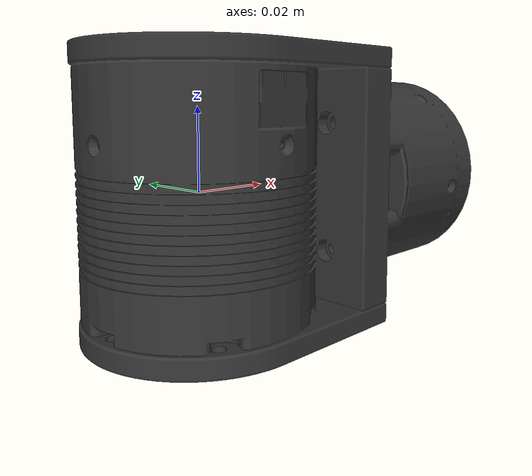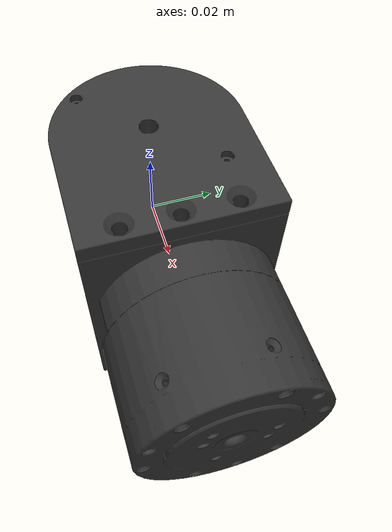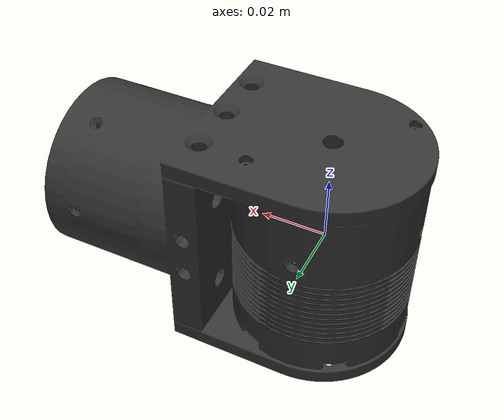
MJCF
<mujoco model="LINK5">
  <default>
    <default class="visual">
      <geom group="2" type="mesh" contype="0" conaffinity="0"/>
    </default>
    <default class="collision">
      <geom group="3" type="mesh"/>
    </default>
  </default>
  <asset>
    <material name="mtl_LINK5" specular="0.20000000000000004" shininess="1.0" rgba="0.20392157 0.20392157 0.20392157 1.0"/>
    <mesh file="LINK5.obj"/>
  </asset>
  <worldbody>
    <body name="LINK5">
      <geom material="mtl_LINK5" mesh="LINK5" class="visual"/>
      <geom mesh="LINK5" class="collision"/>
    </body>
  </worldbody>
</mujoco>
